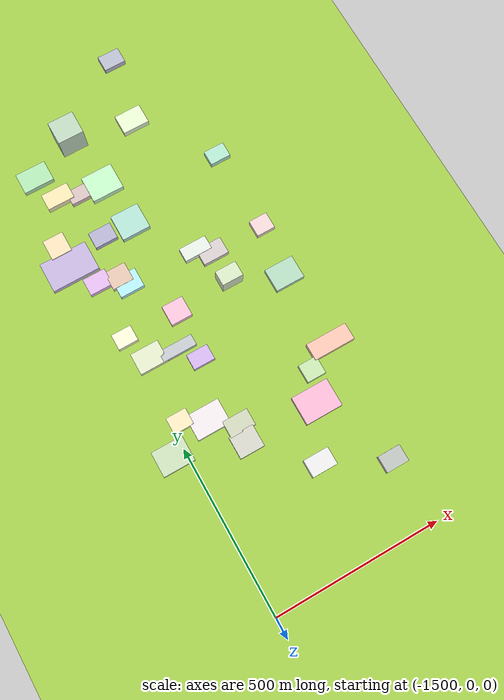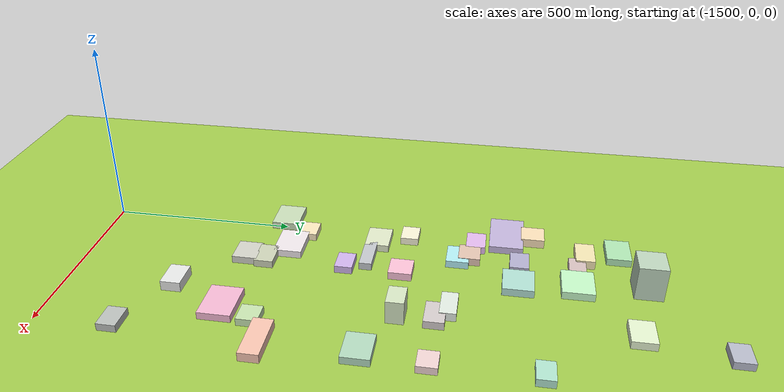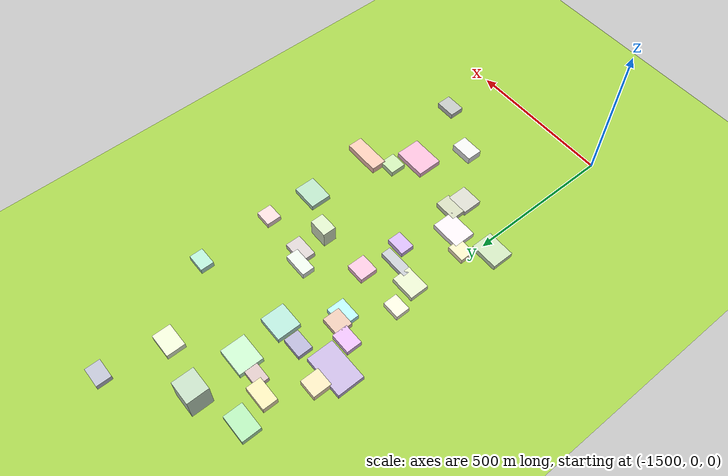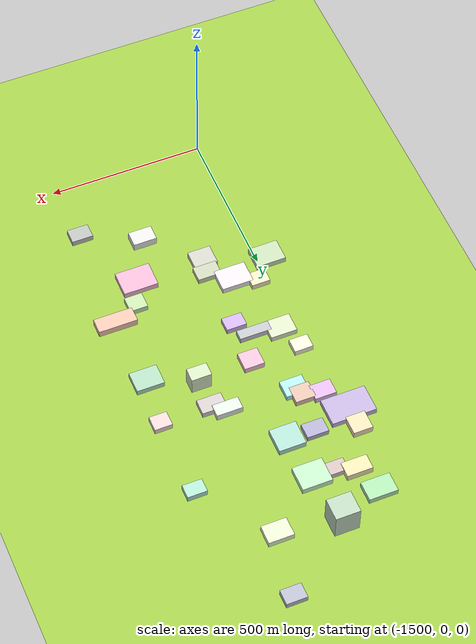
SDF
<sdf version="1.9">
 <world name="city_map">
  <model name="ground_plane">
   <static>1</static>
   <link name="link">
    <collision name="collision">
     <geometry><plane><normal>0 0 1</normal><size>11000 11000</size></plane></geometry>
    </collision>
    <visual name="visual">
     <geometry><plane><normal>0 0 1</normal><size>11000 11000</size></plane></geometry>
     <material>
      <ambient>0.551 0.712 0.210 1</ambient>
      <diffuse>0.651 0.812 0.310 1</diffuse>
      <specular>0.1 0.1 0.05 1</specular>
     </material>
    </visual>
   </link>
  </model>
  <model name="building_563119237">
   <static>1</static>
   <pose>-1535.6254038110358 1115.2358707774467 10.0 0 0 0</pose>
   <link name="link">
    <collision name="collision">
     <geometry><box><size>144.47952806810247 91.33079999939753 20</size></box></geometry>
    </collision>
    <visual name="visual">
     <cast_shadows>false</cast_shadows>
     <geometry><box><size>144.47952806810247 91.33079999939753 20</size></box></geometry>
     <material>
      <ambient>0.678 0.620 0.776 1</ambient>
      <diffuse>0.778 0.720 0.876 1</diffuse>
      <specular>0.234 0.216 0.263 1</specular>
      <emissive>0.01 0.01 0.01 1</emissive>
     </material>
    </visual>
   </link>
  </model>
  <model name="building_399319120">
   <static>1</static>
   <pose>-1118.6508623920915 432.84497953049987 10.0 0 0 0</pose>
   <link name="link">
    <collision name="collision">
     <geometry><box><size>112.44026333319064 84.65970000030865 20</size></box></geometry>
    </collision>
    <visual name="visual">
     <cast_shadows>false</cast_shadows>
     <geometry><box><size>112.44026333319064 84.65970000030865 20</size></box></geometry>
     <material>
      <ambient>0.872 0.636 0.740 1</ambient>
      <diffuse>0.972 0.736 0.840 1</diffuse>
      <specular>0.292 0.221 0.252 1</specular>
      <emissive>0.01 0.01 0.01 1</emissive>
     </material>
    </visual>
   </link>
  </model>
  <model name="building_64869217">
   <static>1</static>
   <pose>-1335.6866127875799 1297.9651743243937 10.5 0 0 0</pose>
   <link name="link">
    <collision name="collision">
     <geometry><box><size>96.76980000065072 82.57469818431251 21.0</size></box></geometry>
    </collision>
    <visual name="visual">
     <cast_shadows>false</cast_shadows>
     <geometry><box><size>96.76980000065072 82.57469818431251 21.0</size></box></geometry>
     <material>
      <ambient>0.684 0.891 0.696 1</ambient>
      <diffuse>0.784 0.991 0.796 1</diffuse>
      <specular>0.235 0.297 0.239 1</specular>
      <emissive>0.01 0.01 0.01 1</emissive>
     </material>
    </visual>
   </link>
  </model>
  <model name="building_426891400">
   <static>1</static>
   <pose>-1403.1711952778533 536.6974763931814 10.0 0 0 0</pose>
   <link name="link">
    <collision name="collision">
     <geometry><box><size>102.15929650646979 75.70199999973681 20</size></box></geometry>
    </collision>
    <visual name="visual">
     <cast_shadows>false</cast_shadows>
     <geometry><box><size>102.15929650646979 75.70199999973681 20</size></box></geometry>
     <material>
      <ambient>0.853 0.822 0.833 1</ambient>
      <diffuse>0.953 0.922 0.933 1</diffuse>
      <specular>0.286 0.277 0.280 1</specular>
      <emissive>0.01 0.01 0.01 1</emissive>
     </material>
    </visual>
   </link>
  </model>
  <model name="building_278034872">
   <static>1</static>
   <pose>-1534.4298799743774 495.9447884931397 10.0 0 0 0</pose>
   <link name="link">
    <collision name="collision">
     <geometry><box><size>95.78494891967782 75.2580000000691 20</size></box></geometry>
    </collision>
    <visual name="visual">
     <cast_shadows>false</cast_shadows>
     <geometry><box><size>95.78494891967782 75.2580000000691 20</size></box></geometry>
     <material>
      <ambient>0.700 0.780 0.635 1</ambient>
      <diffuse>0.800 0.880 0.735 1</diffuse>
      <specular>0.240 0.264 0.221 1</specular>
      <emissive>0.01 0.01 0.01 1</emissive>
     </material>
    </visual>
   </link>
  </model>
  <model name="building_302515180">
   <static>1</static>
   <pose>-1320.8517004253035 1149.7173863823157 10.5 0 0 0</pose>
   <link name="link">
    <collision name="collision">
     <geometry><box><size>86.93951674759232 80.74140000026375 21.0</size></box></geometry>
    </collision>
    <visual name="visual">
     <cast_shadows>false</cast_shadows>
     <geometry><box><size>86.93951674759232 80.74140000026375 21.0</size></box></geometry>
     <material>
      <ambient>0.609 0.792 0.740 1</ambient>
      <diffuse>0.709 0.892 0.840 1</diffuse>
      <specular>0.213 0.268 0.252 1</specular>
      <emissive>0.01 0.01 0.01 1</emissive>
     </material>
    </visual>
   </link>
  </model>
  <model name="building_421297365">
   <static>1</static>
   <pose>-999.8539753937941 558.6801956323874 12.0 0 0 0</pose>
   <link name="link">
    <collision name="collision">
     <geometry><box><size>126.42361246487638 51.09330000003354 24.0</size></box></geometry>
    </collision>
    <visual name="visual">
     <cast_shadows>false</cast_shadows>
     <geometry><box><size>126.42361246487638 51.09330000003354 24.0</size></box></geometry>
     <material>
      <ambient>0.891 0.684 0.610 1</ambient>
      <diffuse>0.991 0.784 0.710 1</diffuse>
      <specular>0.297 0.235 0.213 1</specular>
      <emissive>0.01 0.01 0.01 1</emissive>
     </material>
    </visual>
   </link>
  </model>
  <model name="building_127917944">
   <static>1</static>
   <pose>-1010.3164633111718 794.5131668581427 10.0 0 0 0</pose>
   <link name="link">
    <collision name="collision">
     <geometry><box><size>89.29950000010933 70.7317121506848 20</size></box></geometry>
    </collision>
    <visual name="visual">
     <cast_shadows>false</cast_shadows>
     <geometry><box><size>89.29950000010933 70.7317121506848 20</size></box></geometry>
     <material>
      <ambient>0.617 0.768 0.665 1</ambient>
      <diffuse>0.717 0.868 0.765 1</diffuse>
      <specular>0.215 0.260 0.229 1</specular>
      <emissive>0.01 0.01 0.01 1</emissive>
     </material>
    </visual>
   </link>
  </model>
  <model name="building_121185157">
   <static>1</static>
   <pose>-1500.8108248187998 1411.428091379052 10.0 0 0 0</pose>
   <link name="link">
    <collision name="collision">
     <geometry><box><size>92.97360000045529 64.55799269373337 20</size></box></geometry>
    </collision>
    <visual name="visual">
     <cast_shadows>false</cast_shadows>
     <geometry><box><size>92.97360000045529 64.55799269373337 20</size></box></geometry>
     <material>
      <ambient>0.605 0.816 0.619 1</ambient>
      <diffuse>0.705 0.916 0.719 1</diffuse>
      <specular>0.212 0.275 0.216 1</specular>
      <emissive>0.01 0.01 0.01 1</emissive>
     </material>
    </visual>
   </link>
  </model>
  <model name="building_234956833">
   <static>1</static>
   <pose>-1354.6936182786217 1470.6059363006868 46.51474690912641 0 0 0</pose>
   <link name="link">
    <collision name="collision">
     <geometry><box><size>78.8877000006849 72.36948591673539 93.02949381825282</size></box></geometry>
    </collision>
    <visual name="visual">
     <cast_shadows>false</cast_shadows>
     <geometry><box><size>78.8877000006849 72.36948591673539 93.02949381825282</size></box></geometry>
     <material>
      <ambient>0.660 0.752 0.660 1</ambient>
      <diffuse>0.760 0.852 0.760 1</diffuse>
      <specular>0.228 0.256 0.228 1</specular>
      <emissive>0.01 0.01 0.01 1</emissive>
     </material>
    </visual>
   </link>
  </model>
  <model name="building_288026599">
   <static>1</static>
   <pose>-1461.66232613429 768.859544181795 10.0 0 0 0</pose>
   <link name="link">
    <collision name="collision">
     <geometry><box><size>85.42005303186811 64.7906999999961 20</size></box></geometry>
    </collision>
    <visual name="visual">
     <cast_shadows>false</cast_shadows>
     <geometry><box><size>85.42005303186811 64.7906999999961 20</size></box></geometry>
     <material>
      <ambient>0.792 0.825 0.701 1</ambient>
      <diffuse>0.892 0.925 0.801 1</diffuse>
      <specular>0.267 0.278 0.240 1</specular>
      <emissive>0.01 0.01 0.01 1</emissive>
     </material>
    </visual>
   </link>
  </model>
  <model name="building_424407653">
   <static>1</static>
   <pose>-1164.7764217131269 1436.2484757551088 10.5 0 0 0</pose>
   <link name="link">
    <collision name="collision">
     <geometry><box><size>81.61830000025816 61.70169573026618 21.0</size></box></geometry>
    </collision>
    <visual name="visual">
     <cast_shadows>false</cast_shadows>
     <geometry><box><size>81.61830000025816 61.70169573026618 21.0</size></box></geometry>
     <material>
      <ambient>0.816 0.878 0.732 1</ambient>
      <diffuse>0.916 0.978 0.832 1</diffuse>
      <specular>0.275 0.293 0.250 1</specular>
      <emissive>0.01 0.01 0.01 1</emissive>
     </material>
    </visual>
   </link>
  </model>
  <model name="building_254066228">
   <static>1</static>
   <pose>-1341.123046346416 432.423891060938 10.0 0 0 0</pose>
   <link name="link">
    <collision name="collision">
     <geometry><box><size>74.53649999952461 66.13111182499694 20</size></box></geometry>
    </collision>
    <visual name="visual">
     <cast_shadows>false</cast_shadows>
     <geometry><box><size>74.53649999952461 66.13111182499694 20</size></box></geometry>
     <material>
      <ambient>0.735 0.735 0.696 1</ambient>
      <diffuse>0.835 0.835 0.796 1</diffuse>
      <specular>0.250 0.251 0.239 1</specular>
      <emissive>0.01 0.01 0.01 1</emissive>
     </material>
    </visual>
   </link>
  </model>
  <model name="building_782563225">
   <static>1</static>
   <pose>-1412.2948508461006 989.9899535125567 10.0 0 0 0</pose>
   <link name="link">
    <collision name="collision">
     <geometry><box><size>73.80813679246691 59.86229999997761 20</size></box></geometry>
    </collision>
    <visual name="visual">
     <cast_shadows>false</cast_shadows>
     <geometry><box><size>73.80813679246691 59.86229999997761 20</size></box></geometry>
     <material>
      <ambient>0.618 0.848 0.872 1</ambient>
      <diffuse>0.718 0.948 0.972 1</diffuse>
      <specular>0.216 0.284 0.291 1</specular>
      <emissive>0.01 0.01 0.01 1</emissive>
     </material>
    </visual>
   </link>
  </model>
  <model name="building_239955503">
   <static>1</static>
   <pose>-1468.6339653640814 1322.6144700648902 12.0 0 0 0</pose>
   <link name="link">
    <collision name="collision">
     <geometry><box><size>82.85813147056933 50.31630000041787 24.0</size></box></geometry>
    </collision>
    <visual name="visual">
     <cast_shadows>false</cast_shadows>
     <geometry><box><size>82.85813147056933 50.31630000041787 24.0</size></box></geometry>
     <material>
      <ambient>0.872 0.814 0.620 1</ambient>
      <diffuse>0.972 0.914 0.720 1</diffuse>
      <specular>0.292 0.274 0.216 1</specular>
      <emissive>0.01 0.01 0.01 1</emissive>
     </material>
    </visual>
   </link>
  </model>
  <model name="building_7939803">
   <static>1</static>
   <pose>-1157.1984951406191 954.379341733515 10.5 0 0 0</pose>
   <link name="link">
    <collision name="collision">
     <geometry><box><size>78.85987158283643 51.33749999973247 21.0</size></box></geometry>
    </collision>
    <visual name="visual">
     <cast_shadows>false</cast_shadows>
     <geometry><box><size>78.85987158283643 51.33749999973247 21.0</size></box></geometry>
     <material>
      <ambient>0.748 0.713 0.712 1</ambient>
      <diffuse>0.848 0.813 0.812 1</diffuse>
      <specular>0.254 0.244 0.244 1</specular>
      <emissive>0.01 0.01 0.01 1</emissive>
     </material>
    </visual>
   </link>
  </model>
  <model name="building_724225445">
   <static>1</static>
   <pose>-1195.8137054606925 286.30613189616344 13.5 0 0 0</pose>
   <link name="link">
    <collision name="collision">
     <geometry><box><size>76.29029999951342 52.25392812178895 27.0</size></box></geometry>
    </collision>
    <visual name="visual">
     <cast_shadows>false</cast_shadows>
     <geometry><box><size>76.29029999951342 52.25392812178895 27.0</size></box></geometry>
     <material>
      <ambient>0.821 0.825 0.819 1</ambient>
      <diffuse>0.921 0.925 0.919 1</diffuse>
      <specular>0.276 0.278 0.276 1</specular>
      <emissive>0.01 0.01 0.01 1</emissive>
     </material>
    </visual>
   </link>
  </model>
  <model name="building_708391983">
   <static>1</static>
   <pose>-1330.3401738041562 848.3605808853223 10.5 0 0 0</pose>
   <link name="link">
    <collision name="collision">
     <geometry><box><size>64.73428585514954 61.36080000013777 21.0</size></box></geometry>
    </collision>
    <visual name="visual">
     <cast_shadows>false</cast_shadows>
     <geometry><box><size>64.73428585514954 61.36080000013777 21.0</size></box></geometry>
     <material>
      <ambient>0.897 0.672 0.756 1</ambient>
      <diffuse>0.997 0.772 0.856 1</diffuse>
      <specular>0.299 0.232 0.257 1</specular>
      <emissive>0.01 0.01 0.01 1</emissive>
     </material>
    </visual>
   </link>
  </model>
  <model name="building_645929950">
   <static>1</static>
   <pose>-1538.3364104111697 1186.2509078029282 12.0 0 0 0</pose>
   <link name="link">
    <collision name="collision">
     <geometry><box><size>62.38200000024108 62.379882449549235 24.0</size></box></geometry>
    </collision>
    <visual name="visual">
     <cast_shadows>false</cast_shadows>
     <geometry><box><size>62.38200000024108 62.379882449549235 24.0</size></box></geometry>
     <material>
      <ambient>0.895 0.794 0.640 1</ambient>
      <diffuse>0.995 0.894 0.740 1</diffuse>
      <specular>0.298 0.268 0.222 1</specular>
      <emissive>0.01 0.01 0.01 1</emissive>
     </material>
    </visual>
   </link>
  </model>
  <model name="building_44617518">
   <static>1</static>
   <pose>-1334.6042705168613 486.3509110349666 10.0 0 0 0</pose>
   <link name="link">
    <collision name="collision">
     <geometry><box><size>76.74008896732322 50.7048000002257 20</size></box></geometry>
    </collision>
    <visual name="visual">
     <cast_shadows>false</cast_shadows>
     <geometry><box><size>76.74008896732322 50.7048000002257 20</size></box></geometry>
     <material>
      <ambient>0.716 0.738 0.632 1</ambient>
      <diffuse>0.816 0.838 0.732 1</diffuse>
      <specular>0.245 0.251 0.220 1</specular>
      <emissive>0.01 0.01 0.01 1</emissive>
     </material>
    </visual>
   </link>
  </model>
  <model name="building_447147177">
   <static>1</static>
   <pose>-1425.5988903477069 1019.9808957180998 10.5 0 0 0</pose>
   <link name="link">
    <collision name="collision">
     <geometry><box><size>64.30652690971172 57.36479999997357 21.0</size></box></geometry>
    </collision>
    <visual name="visual">
     <cast_shadows>false</cast_shadows>
     <geometry><box><size>64.30652690971172 57.36479999997357 21.0</size></box></geometry>
     <material>
      <ambient>0.803 0.681 0.606 1</ambient>
      <diffuse>0.903 0.781 0.706 1</diffuse>
      <specular>0.271 0.234 0.212 1</specular>
      <emissive>0.01 0.01 0.01 1</emissive>
     </material>
    </visual>
   </link>
  </model>
  <model name="building_26582939">
   <static>1</static>
   <pose>-1486.6286534385397 1033.948805277417 10.5 0 0 0</pose>
   <link name="link">
    <collision name="collision">
     <geometry><box><size>69.22908565244282 52.158899999867 21.0</size></box></geometry>
    </collision>
    <visual name="visual">
     <cast_shadows>false</cast_shadows>
     <geometry><box><size>69.22908565244282 52.158899999867 21.0</size></box></geometry>
     <material>
      <ambient>0.802 0.640 0.843 1</ambient>
      <diffuse>0.902 0.740 0.943 1</diffuse>
      <specular>0.271 0.222 0.283 1</specular>
      <emissive>0.01 0.01 0.01 1</emissive>
     </material>
    </visual>
   </link>
  </model>
  <model name="building_351327274">
   <static>1</static>
   <pose>-1195.9571521912142 984.2735409814704 11.504999999999999 0 0 0</pose>
   <link name="link">
    <collision name="collision">
     <geometry><box><size>84.12664111341677 41.86919999950334 23.009999999999998</size></box></geometry>
    </collision>
    <visual name="visual">
     <cast_shadows>false</cast_shadows>
     <geometry><box><size>84.12664111341677 41.86919999950334 23.009999999999998</size></box></geometry>
     <material>
      <ambient>0.804 0.839 0.801 1</ambient>
      <diffuse>0.904 0.939 0.901 1</diffuse>
      <specular>0.271 0.282 0.270 1</specular>
      <emissive>0.01 0.01 0.01 1</emissive>
     </material>
    </visual>
   </link>
  </model>
  <model name="building_332028674">
   <static>1</static>
   <pose>-1409.1188505895705 1151.6171299019293 10.0 0 0 0</pose>
   <link name="link">
    <collision name="collision">
     <geometry><box><size>69.50441668881915 50.14980000004954 20</size></box></geometry>
    </collision>
    <visual name="visual">
     <cast_shadows>false</cast_shadows>
     <geometry><box><size>69.50441668881915 50.14980000004954 20</size></box></geometry>
     <material>
      <ambient>0.615 0.604 0.728 1</ambient>
      <diffuse>0.715 0.704 0.828 1</diffuse>
      <specular>0.215 0.211 0.248 1</specular>
      <emissive>0.01 0.01 0.01 1</emissive>
     </material>
    </visual>
   </link>
  </model>
  <model name="building_302874437">
   <static>1</static>
   <pose>-1380.5630930130378 753.3188401497971 10.0 0 0 0</pose>
   <link name="link">
    <collision name="collision">
     <geometry><box><size>103.67411287209728 33.38879999977706 20</size></box></geometry>
    </collision>
    <visual name="visual">
     <cast_shadows>false</cast_shadows>
     <geometry><box><size>103.67411287209728 33.38879999977706 20</size></box></geometry>
     <material>
      <ambient>0.676 0.693 0.714 1</ambient>
      <diffuse>0.776 0.793 0.814 1</diffuse>
      <specular>0.233 0.238 0.244 1</specular>
      <emissive>0.01 0.01 0.01 1</emissive>
     </material>
    </visual>
   </link>
  </model>
  <model name="building_164535808">
   <static>1</static>
   <pose>-1018.3005002054364 197.52324631049945 10.0 0 0 0</pose>
   <link name="link">
    <collision name="collision">
     <geometry><box><size>68.68049060345669 49.65029999973325 20</size></box></geometry>
    </collision>
    <visual name="visual">
     <cast_shadows>false</cast_shadows>
     <geometry><box><size>68.68049060345669 49.65029999973325 20</size></box></geometry>
     <material>
      <ambient>0.646 0.663 0.649 1</ambient>
      <diffuse>0.746 0.763 0.749 1</diffuse>
      <specular>0.224 0.229 0.225 1</specular>
      <emissive>0.01 0.01 0.01 1</emissive>
     </material>
    </visual>
   </link>
  </model>
  <model name="building_959549605">
   <static>1</static>
   <pose>-1125.1313027864778 1644.7196221660208 10.0 0 0 0</pose>
   <link name="link">
    <collision name="collision">
     <geometry><box><size>67.13280000055022 49.89659227179039 20</size></box></geometry>
    </collision>
    <visual name="visual">
     <cast_shadows>false</cast_shadows>
     <geometry><box><size>67.13280000055022 49.89659227179039 20</size></box></geometry>
     <material>
      <ambient>0.635 0.649 0.711 1</ambient>
      <diffuse>0.735 0.749 0.811 1</diffuse>
      <specular>0.221 0.225 0.243 1</specular>
      <emissive>0.01 0.01 0.01 1</emissive>
     </material>
    </visual>
   </link>
  </model>
  <model name="building_743226095">
   <static>1</static>
   <pose>-1404.7919690251088 1300.827585195286 10.0 0 0 0</pose>
   <link name="link">
    <collision name="collision">
     <geometry><box><size>74.95809338590539 43.82280000024963 20</size></box></geometry>
    </collision>
    <visual name="visual">
     <cast_shadows>false</cast_shadows>
     <geometry><box><size>74.95809338590539 43.82280000024963 20</size></box></geometry>
     <material>
      <ambient>0.754 0.669 0.664 1</ambient>
      <diffuse>0.854 0.769 0.764 1</diffuse>
      <specular>0.256 0.231 0.229 1</specular>
      <emissive>0.01 0.01 0.01 1</emissive>
     </material>
    </visual>
   </link>
  </model>
  <model name="building_873244430">
   <static>1</static>
   <pose>-1083.9409195666688 516.8769454566612 10.0 0 0 0</pose>
   <link name="link">
    <collision name="collision">
     <geometry><box><size>57.694752965975034 53.95709999958598 20</size></box></geometry>
    </collision>
    <visual name="visual">
     <cast_shadows>false</cast_shadows>
     <geometry><box><size>57.694752965975034 53.95709999958598 20</size></box></geometry>
     <material>
      <ambient>0.695 0.808 0.602 1</ambient>
      <diffuse>0.795 0.908 0.702 1</diffuse>
      <specular>0.238 0.272 0.211 1</specular>
      <emissive>0.01 0.01 0.01 1</emissive>
     </material>
    </visual>
   </link>
  </model>
  <model name="building_785378985">
   <static>1</static>
   <pose>-1336.5557198198871 699.5223415234792 10.0 0 0 0</pose>
   <link name="link">
    <collision name="collision">
     <geometry><box><size>65.19546280444519 46.78650000018081 20</size></box></geometry>
    </collision>
    <visual name="visual">
     <cast_shadows>false</cast_shadows>
     <geometry><box><size>65.19546280444519 46.78650000018081 20</size></box></geometry>
     <material>
      <ambient>0.730 0.619 0.837 1</ambient>
      <diffuse>0.830 0.719 0.937 1</diffuse>
      <specular>0.249 0.216 0.281 1</specular>
      <emissive>0.01 0.01 0.01 1</emissive>
     </material>
    </visual>
   </link>
  </model>
  <model name="building_663546295">
   <static>1</static>
   <pose>-1472.855466561105 570.665823976886 10.0 0 0 0</pose>
   <link name="link">
    <collision name="collision">
     <geometry><box><size>60.733270483455065 49.994400000599626 20</size></box></geometry>
    </collision>
    <visual name="visual">
     <cast_shadows>false</cast_shadows>
     <geometry><box><size>60.733270483455065 49.994400000599626 20</size></box></geometry>
     <material>
      <ambient>0.892 0.826 0.665 1</ambient>
      <diffuse>0.992 0.926 0.765 1</diffuse>
      <specular>0.298 0.278 0.230 1</specular>
      <emissive>0.01 0.01 0.01 1</emissive>
     </material>
    </visual>
   </link>
  </model>
  <model name="building_544367931">
   <static>1</static>
   <pose>-1154.177529902564 861.0338990971009 31.5 0 0 0</pose>
   <link name="link">
    <collision name="collision">
     <geometry><box><size>64.76849999973666 45.474632473036195 63.0</size></box></geometry>
    </collision>
    <visual name="visual">
     <cast_shadows>false</cast_shadows>
     <geometry><box><size>64.76849999973666 45.474632473036195 63.0</size></box></geometry>
     <material>
      <ambient>0.754 0.816 0.680 1</ambient>
      <diffuse>0.854 0.916 0.780 1</diffuse>
      <specular>0.256 0.275 0.234 1</specular>
      <emissive>0.01 0.01 0.01 1</emissive>
     </material>
    </visual>
   </link>
  </model>
  <model name="building_803502065">
   <static>1</static>
   <pose>-1495.109987072365 852.527595735352 10.0 0 0 0</pose>
   <link name="link">
    <collision name="collision">
     <geometry><box><size>60.60820321862023 47.896499999744435 20</size></box></geometry>
    </collision>
    <visual name="visual">
     <cast_shadows>false</cast_shadows>
     <geometry><box><size>60.60820321862023 47.896499999744435 20</size></box></geometry>
     <material>
      <ambient>0.889 0.873 0.761 1</ambient>
      <diffuse>0.989 0.973 0.861 1</diffuse>
      <specular>0.297 0.292 0.258 1</specular>
      <emissive>0.01 0.01 0.01 1</emissive>
     </material>
    </visual>
   </link>
  </model>
  <model name="building_959610940">
   <static>1</static>
   <pose>-996.8225662062632 1212.7204629666394 10.5 0 0 0</pose>
   <link name="link">
    <collision name="collision">
     <geometry><box><size>63.210164253809644 45.310200000280076 21.0</size></box></geometry>
    </collision>
    <visual name="visual">
     <cast_shadows>false</cast_shadows>
     <geometry><box><size>63.210164253809644 45.310200000280076 21.0</size></box></geometry>
     <material>
      <ambient>0.610 0.812 0.726 1</ambient>
      <diffuse>0.710 0.912 0.826 1</diffuse>
      <specular>0.213 0.274 0.248 1</specular>
      <emissive>0.01 0.01 0.01 1</emissive>
     </material>
    </visual>
   </link>
  </model>
  <model name="building_486042789">
   <static>1</static>
   <pose>-991.9917758511706 955.0140419761776 10.0 0 0 0</pose>
   <link name="link">
    <collision name="collision">
     <geometry><box><size>56.68769999994794 50.32224796676725 20</size></box></geometry>
    </collision>
    <visual name="visual">
     <cast_shadows>false</cast_shadows>
     <geometry><box><size>56.68769999994794 50.32224796676725 20</size></box></geometry>
     <material>
      <ambient>0.860 0.750 0.748 1</ambient>
      <diffuse>0.960 0.850 0.848 1</diffuse>
      <specular>0.288 0.255 0.254 1</specular>
      <emissive>0.01 0.01 0.01 1</emissive>
     </material>
    </visual>
   </link>
  </model>
 </world>
</sdf>
